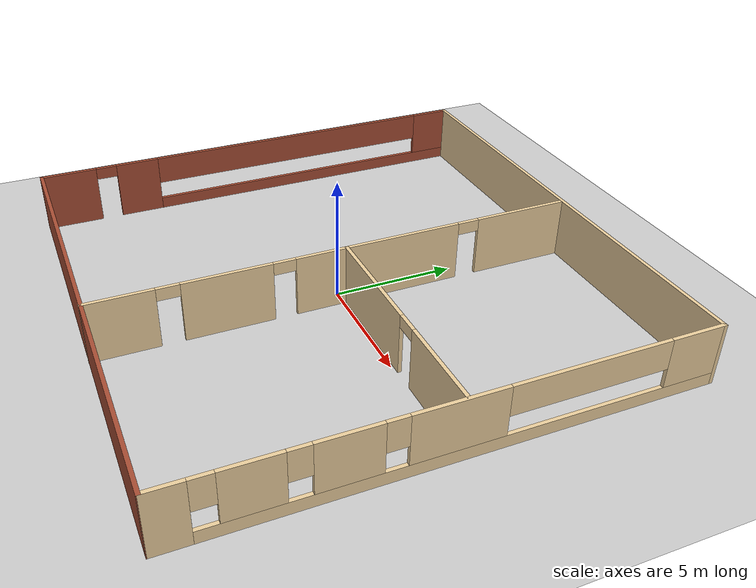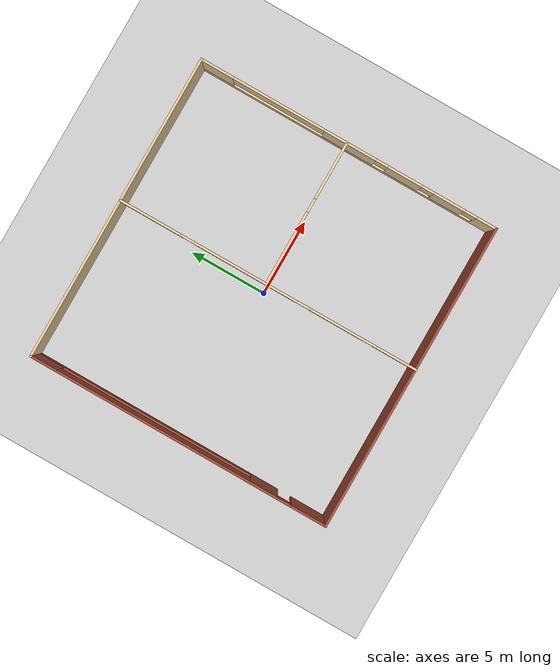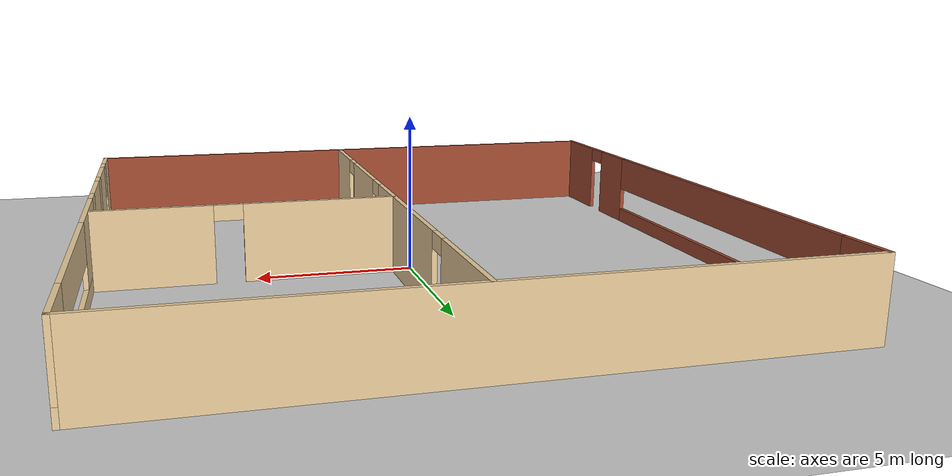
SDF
<sdf version="1.6">
 <world name="default">
  <model name="ground_plane">
   <static>1</static>
   <link name="link">
    <collision name="collision">
     <geometry><plane><normal>0 0 1</normal><size>100 100</size></plane></geometry>
     <surface><friction><ode><mu>100</mu><mu2>50</mu2></ode></friction></surface>
    </collision>
    <visual name="visual">
     <cast_shadows>0</cast_shadows>
     <geometry><plane><normal>0 0 1</normal><size>100 100</size></plane></geometry>
     <material>
      <script><uri>file://media/materials/scripts/gazebo.material</uri><name>Gazebo/Grey</name></script>
     </material>
    </visual>
   </link>
  </model>
  <model name="floor-blueprint">
   <link name="Wall_11">
    <pose>0.520348 -0.015048 0 0 -0 1.57213</pose>
    <visual name="Wall_11_Visual_0">
     <pose>-8.62771 0 1.25 0 -0 0</pose>
     <geometry><box><size>2.68538 0.15 2.5</size></box></geometry>
     <material>
      <script><uri>file://media/materials/scripts/gazebo.material</uri><name>Gazebo/Grey</name></script>
      <ambient>0.921569 0.807843 0.615686 1</ambient>
      <shader type="pixel"/>
      <diffuse>0.7 0.7 0.7 1</diffuse>
      <specular>0.01 0.01 0.01 1</specular>
      <emissive>0 0 0 1</emissive>
     </material>
     <meta><layer>0</layer></meta>
    </visual>
    <visual name="Wall_11_Visual_1">
     <pose>-4.6147 0 1.25 0 -0 0</pose>
     <geometry><box><size>3.54064 0.15 2.5</size></box></geometry>
     <material>
      <script><uri>file://media/materials/scripts/gazebo.material</uri><name>Gazebo/Grey</name></script>
      <ambient>0.921569 0.807843 0.615686 1</ambient>
      <shader type="pixel"/>
      <diffuse>0.7 0.7 0.7 1</diffuse>
      <specular>0.01 0.01 0.01 1</specular>
      <emissive>0 0 0 1</emissive>
     </material>
     <meta><layer>0</layer></meta>
    </visual>
    <visual name="Wall_11_Visual_2">
     <pose>1.51466 0 1.25 0 -0 0</pose>
     <geometry><box><size>6.91808 0.15 2.5</size></box></geometry>
     <material>
      <script><uri>file://media/materials/scripts/gazebo.material</uri><name>Gazebo/Grey</name></script>
      <ambient>0.921569 0.807843 0.615686 1</ambient>
      <shader type="pixel"/>
      <diffuse>0.7 0.7 0.7 1</diffuse>
      <specular>0.01 0.01 0.01 1</specular>
      <emissive>0 0 0 1</emissive>
     </material>
     <meta><layer>0</layer></meta>
    </visual>
    <visual name="Wall_11_Visual_3">
     <pose>7.92205 0 1.25 0 -0 0</pose>
     <geometry><box><size>4.09671 0.15 2.5</size></box></geometry>
     <material>
      <script><uri>file://media/materials/scripts/gazebo.material</uri><name>Gazebo/Grey</name></script>
      <ambient>0.921569 0.807843 0.615686 1</ambient>
      <shader type="pixel"/>
      <diffuse>0.7 0.7 0.7 1</diffuse>
      <specular>0.01 0.01 0.01 1</specular>
      <emissive>0 0 0 1</emissive>
     </material>
     <meta><layer>0</layer></meta>
    </visual>
    <visual name="Wall_11_Visual_4">
     <pose>-6.83502 0 2.25 0 -0 0</pose>
     <geometry><box><size>0.9 0.15 0.5</size></box></geometry>
     <material>
      <script><uri>file://media/materials/scripts/gazebo.material</uri><name>Gazebo/Grey</name></script>
      <ambient>0.921569 0.807843 0.615686 1</ambient>
      <shader type="pixel"/>
      <diffuse>0.7 0.7 0.7 1</diffuse>
      <specular>0.01 0.01 0.01 1</specular>
      <emissive>0 0 0 1</emissive>
     </material>
     <meta><layer>0</layer></meta>
    </visual>
    <visual name="Wall_11_Visual_5">
     <pose>-2.39438 0 2.25 0 -0 0</pose>
     <geometry><box><size>0.9 0.15 0.5</size></box></geometry>
     <material>
      <script><uri>file://media/materials/scripts/gazebo.material</uri><name>Gazebo/Grey</name></script>
      <ambient>0.921569 0.807843 0.615686 1</ambient>
      <shader type="pixel"/>
      <diffuse>0.7 0.7 0.7 1</diffuse>
      <specular>0.01 0.01 0.01 1</specular>
      <emissive>0 0 0 1</emissive>
     </material>
     <meta><layer>0</layer></meta>
    </visual>
    <visual name="Wall_11_Visual_6">
     <pose>5.4237 0 2.25 0 -0 0</pose>
     <geometry><box><size>0.9 0.15 0.5</size></box></geometry>
     <material>
      <script><uri>file://media/materials/scripts/gazebo.material</uri><name>Gazebo/Grey</name></script>
      <ambient>0.921569 0.807843 0.615686 1</ambient>
      <shader type="pixel"/>
      <diffuse>0.7 0.7 0.7 1</diffuse>
      <specular>0.01 0.01 0.01 1</specular>
      <emissive>0 0 0 1</emissive>
     </material>
     <meta><layer>0</layer></meta>
    </visual>
    <collision name="Wall_11_Collision_0">
     <pose>-8.62771 0 1.25 0 -0 0</pose>
     <geometry><box><size>2.68538 0.15 2.5</size></box></geometry>
     <surface>
      <friction>
       <ode><mu>1</mu><mu2>1</mu2><fdir1>0 0 0</fdir1><slip1>0</slip1><slip2>0</slip2></ode>
       <torsional>
        <coefficient>1</coefficient>
        <patch_radius>0</patch_radius>
        <surface_radius>0</surface_radius>
        <use_patch_radius>1</use_patch_radius>
        <ode><slip>0</slip></ode>
       </torsional>
      </friction>
      <bounce><restitution_coefficient>0</restitution_coefficient><threshold>1e+06</threshold></bounce>
      <contact>
       <collide_without_contact>0</collide_without_contact>
       <collide_without_contact_bitmask>1</collide_without_contact_bitmask>
       <collide_bitmask>1</collide_bitmask>
       <ode>
        <soft_cfm>0</soft_cfm>
        <soft_erp>0.2</soft_erp>
        <kp>1e+13</kp>
        <kd>1</kd>
        <max_vel>0.01</max_vel>
        <min_depth>0</min_depth>
       </ode>
       <bullet>
        <split_impulse>1</split_impulse>
        <split_impulse_penetration_threshold>-0.01</split_impulse_penetration_threshold>
        <soft_cfm>0</soft_cfm>
        <soft_erp>0.2</soft_erp>
        <kp>1e+13</kp>
        <kd>1</kd>
       </bullet>
      </contact>
     </surface>
    </collision>
    <collision name="Wall_11_Collision_1">
     <pose>-4.6147 0 1.25 0 -0 0</pose>
     <geometry><box><size>3.54064 0.15 2.5</size></box></geometry>
     <surface>
      <friction>
       <ode><mu>1</mu><mu2>1</mu2><fdir1>0 0 0</fdir1><slip1>0</slip1><slip2>0</slip2></ode>
       <torsional>
        <coefficient>1</coefficient>
        <patch_radius>0</patch_radius>
        <surface_radius>0</surface_radius>
        <use_patch_radius>1</use_patch_radius>
        <ode><slip>0</slip></ode>
       </torsional>
      </friction>
      <bounce><restitution_coefficient>0</restitution_coefficient><threshold>1e+06</threshold></bounce>
      <contact>
       <collide_without_contact>0</collide_without_contact>
       <collide_without_contact_bitmask>1</collide_without_contact_bitmask>
       <collide_bitmask>1</collide_bitmask>
       <ode>
        <soft_cfm>0</soft_cfm>
        <soft_erp>0.2</soft_erp>
        <kp>1e+13</kp>
        <kd>1</kd>
        <max_vel>0.01</max_vel>
        <min_depth>0</min_depth>
       </ode>
       <bullet>
        <split_impulse>1</split_impulse>
        <split_impulse_penetration_threshold>-0.01</split_impulse_penetration_threshold>
        <soft_cfm>0</soft_cfm>
        <soft_erp>0.2</soft_erp>
        <kp>1e+13</kp>
        <kd>1</kd>
       </bullet>
      </contact>
     </surface>
    </collision>
    <collision name="Wall_11_Collision_2">
     <pose>1.51466 0 1.25 0 -0 0</pose>
     <geometry><box><size>6.91808 0.15 2.5</size></box></geometry>
     <surface>
      <friction>
       <ode><mu>1</mu><mu2>1</mu2><fdir1>0 0 0</fdir1><slip1>0</slip1><slip2>0</slip2></ode>
       <torsional>
        <coefficient>1</coefficient>
        <patch_radius>0</patch_radius>
        <surface_radius>0</surface_radius>
        <use_patch_radius>1</use_patch_radius>
        <ode><slip>0</slip></ode>
       </torsional>
      </friction>
      <bounce><restitution_coefficient>0</restitution_coefficient><threshold>1e+06</threshold></bounce>
      <contact>
       <collide_without_contact>0</collide_without_contact>
       <collide_without_contact_bitmask>1</collide_without_contact_bitmask>
       <collide_bitmask>1</collide_bitmask>
       <ode>
        <soft_cfm>0</soft_cfm>
        <soft_erp>0.2</soft_erp>
        <kp>1e+13</kp>
        <kd>1</kd>
        <max_vel>0.01</max_vel>
        <min_depth>0</min_depth>
       </ode>
       <bullet>
        <split_impulse>1</split_impulse>
        <split_impulse_penetration_threshold>-0.01</split_impulse_penetration_threshold>
        <soft_cfm>0</soft_cfm>
        <soft_erp>0.2</soft_erp>
        <kp>1e+13</kp>
        <kd>1</kd>
       </bullet>
      </contact>
     </surface>
    </collision>
    <collision name="Wall_11_Collision_3">
     <pose>7.92205 0 1.25 0 -0 0</pose>
     <geometry><box><size>4.09671 0.15 2.5</size></box></geometry>
     <surface>
      <friction>
       <ode><mu>1</mu><mu2>1</mu2><fdir1>0 0 0</fdir1><slip1>0</slip1><slip2>0</slip2></ode>
       <torsional>
        <coefficient>1</coefficient>
        <patch_radius>0</patch_radius>
        <surface_radius>0</surface_radius>
        <use_patch_radius>1</use_patch_radius>
        <ode><slip>0</slip></ode>
       </torsional>
      </friction>
      <bounce><restitution_coefficient>0</restitution_coefficient><threshold>1e+06</threshold></bounce>
      <contact>
       <collide_without_contact>0</collide_without_contact>
       <collide_without_contact_bitmask>1</collide_without_contact_bitmask>
       <collide_bitmask>1</collide_bitmask>
       <ode>
        <soft_cfm>0</soft_cfm>
        <soft_erp>0.2</soft_erp>
        <kp>1e+13</kp>
        <kd>1</kd>
        <max_vel>0.01</max_vel>
        <min_depth>0</min_depth>
       </ode>
       <bullet>
        <split_impulse>1</split_impulse>
        <split_impulse_penetration_threshold>-0.01</split_impulse_penetration_threshold>
        <soft_cfm>0</soft_cfm>
        <soft_erp>0.2</soft_erp>
        <kp>1e+13</kp>
        <kd>1</kd>
       </bullet>
      </contact>
     </surface>
    </collision>
    <collision name="Wall_11_Collision_4">
     <pose>-6.83502 0 2.25 0 -0 0</pose>
     <geometry><box><size>0.9 0.15 0.5</size></box></geometry>
     <surface>
      <friction>
       <ode><mu>1</mu><mu2>1</mu2><fdir1>0 0 0</fdir1><slip1>0</slip1><slip2>0</slip2></ode>
       <torsional>
        <coefficient>1</coefficient>
        <patch_radius>0</patch_radius>
        <surface_radius>0</surface_radius>
        <use_patch_radius>1</use_patch_radius>
        <ode><slip>0</slip></ode>
       </torsional>
      </friction>
      <bounce><restitution_coefficient>0</restitution_coefficient><threshold>1e+06</threshold></bounce>
      <contact>
       <collide_without_contact>0</collide_without_contact>
       <collide_without_contact_bitmask>1</collide_without_contact_bitmask>
       <collide_bitmask>1</collide_bitmask>
       <ode>
        <soft_cfm>0</soft_cfm>
        <soft_erp>0.2</soft_erp>
        <kp>1e+13</kp>
        <kd>1</kd>
        <max_vel>0.01</max_vel>
        <min_depth>0</min_depth>
       </ode>
       <bullet>
        <split_impulse>1</split_impulse>
        <split_impulse_penetration_threshold>-0.01</split_impulse_penetration_threshold>
        <soft_cfm>0</soft_cfm>
        <soft_erp>0.2</soft_erp>
        <kp>1e+13</kp>
        <kd>1</kd>
       </bullet>
      </contact>
     </surface>
    </collision>
    <collision name="Wall_11_Collision_5">
     <pose>-2.39438 0 2.25 0 -0 0</pose>
     <geometry><box><size>0.9 0.15 0.5</size></box></geometry>
     <surface>
      <friction>
       <ode><mu>1</mu><mu2>1</mu2><fdir1>0 0 0</fdir1><slip1>0</slip1><slip2>0</slip2></ode>
       <torsional>
        <coefficient>1</coefficient>
        <patch_radius>0</patch_radius>
        <surface_radius>0</surface_radius>
        <use_patch_radius>1</use_patch_radius>
        <ode><slip>0</slip></ode>
       </torsional>
      </friction>
      <bounce><restitution_coefficient>0</restitution_coefficient><threshold>1e+06</threshold></bounce>
      <contact>
       <collide_without_contact>0</collide_without_contact>
       <collide_without_contact_bitmask>1</collide_without_contact_bitmask>
       <collide_bitmask>1</collide_bitmask>
       <ode>
        <soft_cfm>0</soft_cfm>
        <soft_erp>0.2</soft_erp>
        <kp>1e+13</kp>
        <kd>1</kd>
        <max_vel>0.01</max_vel>
        <min_depth>0</min_depth>
       </ode>
       <bullet>
        <split_impulse>1</split_impulse>
        <split_impulse_penetration_threshold>-0.01</split_impulse_penetration_threshold>
        <soft_cfm>0</soft_cfm>
        <soft_erp>0.2</soft_erp>
        <kp>1e+13</kp>
        <kd>1</kd>
       </bullet>
      </contact>
     </surface>
    </collision>
    <collision name="Wall_11_Collision_6">
     <pose>5.4237 0 2.25 0 -0 0</pose>
     <geometry><box><size>0.9 0.15 0.5</size></box></geometry>
     <surface>
      <friction>
       <ode><mu>1</mu><mu2>1</mu2><fdir1>0 0 0</fdir1><slip1>0</slip1><slip2>0</slip2></ode>
       <torsional>
        <coefficient>1</coefficient>
        <patch_radius>0</patch_radius>
        <surface_radius>0</surface_radius>
        <use_patch_radius>1</use_patch_radius>
        <ode><slip>0</slip></ode>
       </torsional>
      </friction>
      <bounce><restitution_coefficient>0</restitution_coefficient><threshold>1e+06</threshold></bounce>
      <contact>
       <collide_without_contact>0</collide_without_contact>
       <collide_without_contact_bitmask>1</collide_without_contact_bitmask>
       <collide_bitmask>1</collide_bitmask>
       <ode>
        <soft_cfm>0</soft_cfm>
        <soft_erp>0.2</soft_erp>
        <kp>1e+13</kp>
        <kd>1</kd>
        <max_vel>0.01</max_vel>
        <min_depth>0</min_depth>
       </ode>
       <bullet>
        <split_impulse>1</split_impulse>
        <split_impulse_penetration_threshold>-0.01</split_impulse_penetration_threshold>
        <soft_cfm>0</soft_cfm>
        <soft_erp>0.2</soft_erp>
        <kp>1e+13</kp>
        <kd>1</kd>
       </bullet>
      </contact>
     </surface>
    </collision>
   </link>
   <link name="Wall_2">
    <pose>2.1e-05 -9.90419 0 0 -0 0.000505</pose>
    <visual name="Wall_2_Visual">
     <pose>0 0 1.25 0 -0 0</pose>
     <geometry><box><size>20.1008 0.15 2.5</size></box></geometry>
     <material>
      <script><uri>file://media/materials/scripts/gazebo.material</uri><name>Gazebo/Bricks</name></script>
      <ambient>1 1 1 1</ambient>
      <shader type="pixel"/>
      <diffuse>1 1 1 1</diffuse>
      <specular>0.2 0.2 0.2 1</specular>
      <emissive>0 0 0 1</emissive>
     </material>
     <meta><layer>0</layer></meta>
    </visual>
    <collision name="Wall_2_Collision">
     <pose>0 0 1.25 0 -0 0</pose>
     <geometry><box><size>20.1008 0.15 2.5</size></box></geometry>
     <surface>
      <friction>
       <ode><mu>1</mu><mu2>1</mu2><fdir1>0 0 0</fdir1><slip1>0</slip1><slip2>0</slip2></ode>
       <torsional>
        <coefficient>1</coefficient>
        <patch_radius>0</patch_radius>
        <surface_radius>0</surface_radius>
        <use_patch_radius>1</use_patch_radius>
        <ode><slip>0</slip></ode>
       </torsional>
      </friction>
      <bounce><restitution_coefficient>0</restitution_coefficient><threshold>1e+06</threshold></bounce>
      <contact>
       <collide_without_contact>0</collide_without_contact>
       <collide_without_contact_bitmask>1</collide_without_contact_bitmask>
       <collide_bitmask>1</collide_bitmask>
       <ode>
        <soft_cfm>0</soft_cfm>
        <soft_erp>0.2</soft_erp>
        <kp>1e+13</kp>
        <kd>1</kd>
        <max_vel>0.01</max_vel>
        <min_depth>0</min_depth>
       </ode>
       <bullet>
        <split_impulse>1</split_impulse>
        <split_impulse_penetration_threshold>-0.01</split_impulse_penetration_threshold>
        <soft_cfm>0</soft_cfm>
        <soft_erp>0.2</soft_erp>
        <kp>1e+13</kp>
        <kd>1</kd>
       </bullet>
      </contact>
     </surface>
    </collision>
   </link>
   <link name="Wall_28">
    <pose>5.22927 0.135167 0 0 -0 0</pose>
    <visual name="Wall_28_Visual_0">
     <pose>-2.32374 0 1.25 0 -0 0</pose>
     <geometry><box><size>4.85252 0.15 2.5</size></box></geometry>
     <material>
      <script><uri>file://media/materials/scripts/gazebo.material</uri><name>Gazebo/Grey</name></script>
      <ambient>0.921569 0.807843 0.615686 1</ambient>
      <shader type="pixel"/>
      <diffuse>0.7 0.7 0.7 1</diffuse>
      <specular>0.01 0.01 0.01 1</specular>
      <emissive>0 0 0 1</emissive>
     </material>
     <meta><layer>0</layer></meta>
    </visual>
    <visual name="Wall_28_Visual_1">
     <pose>2.87626 0 1.25 0 -0 0</pose>
     <geometry><box><size>3.74748 0.15 2.5</size></box></geometry>
     <material>
      <script><uri>file://media/materials/scripts/gazebo.material</uri><name>Gazebo/Grey</name></script>
      <ambient>0.921569 0.807843 0.615686 1</ambient>
      <shader type="pixel"/>
      <diffuse>0.7 0.7 0.7 1</diffuse>
      <specular>0.01 0.01 0.01 1</specular>
      <emissive>0 0 0 1</emissive>
     </material>
     <meta><layer>0</layer></meta>
    </visual>
    <visual name="Wall_28_Visual_2">
     <pose>0.552517 0 2.25 0 -0 0</pose>
     <geometry><box><size>0.9 0.15 0.5</size></box></geometry>
     <material>
      <script><uri>file://media/materials/scripts/gazebo.material</uri><name>Gazebo/Grey</name></script>
      <ambient>0.921569 0.807843 0.615686 1</ambient>
      <shader type="pixel"/>
      <diffuse>0.7 0.7 0.7 1</diffuse>
      <specular>0.01 0.01 0.01 1</specular>
      <emissive>0 0 0 1</emissive>
     </material>
     <meta><layer>0</layer></meta>
    </visual>
    <collision name="Wall_28_Collision_0">
     <pose>-2.32374 0 1.25 0 -0 0</pose>
     <geometry><box><size>4.85252 0.15 2.5</size></box></geometry>
     <surface>
      <friction>
       <ode><mu>1</mu><mu2>1</mu2><fdir1>0 0 0</fdir1><slip1>0</slip1><slip2>0</slip2></ode>
       <torsional>
        <coefficient>1</coefficient>
        <patch_radius>0</patch_radius>
        <surface_radius>0</surface_radius>
        <use_patch_radius>1</use_patch_radius>
        <ode><slip>0</slip></ode>
       </torsional>
      </friction>
      <bounce><restitution_coefficient>0</restitution_coefficient><threshold>1e+06</threshold></bounce>
      <contact>
       <collide_without_contact>0</collide_without_contact>
       <collide_without_contact_bitmask>1</collide_without_contact_bitmask>
       <collide_bitmask>1</collide_bitmask>
       <ode>
        <soft_cfm>0</soft_cfm>
        <soft_erp>0.2</soft_erp>
        <kp>1e+13</kp>
        <kd>1</kd>
        <max_vel>0.01</max_vel>
        <min_depth>0</min_depth>
       </ode>
       <bullet>
        <split_impulse>1</split_impulse>
        <split_impulse_penetration_threshold>-0.01</split_impulse_penetration_threshold>
        <soft_cfm>0</soft_cfm>
        <soft_erp>0.2</soft_erp>
        <kp>1e+13</kp>
        <kd>1</kd>
       </bullet>
      </contact>
     </surface>
    </collision>
    <collision name="Wall_28_Collision_1">
     <pose>2.87626 0 1.25 0 -0 0</pose>
     <geometry><box><size>3.74748 0.15 2.5</size></box></geometry>
     <surface>
      <friction>
       <ode><mu>1</mu><mu2>1</mu2><fdir1>0 0 0</fdir1><slip1>0</slip1><slip2>0</slip2></ode>
       <torsional>
        <coefficient>1</coefficient>
        <patch_radius>0</patch_radius>
        <surface_radius>0</surface_radius>
        <use_patch_radius>1</use_patch_radius>
        <ode><slip>0</slip></ode>
       </torsional>
      </friction>
      <bounce><restitution_coefficient>0</restitution_coefficient><threshold>1e+06</threshold></bounce>
      <contact>
       <collide_without_contact>0</collide_without_contact>
       <collide_without_contact_bitmask>1</collide_without_contact_bitmask>
       <collide_bitmask>1</collide_bitmask>
       <ode>
        <soft_cfm>0</soft_cfm>
        <soft_erp>0.2</soft_erp>
        <kp>1e+13</kp>
        <kd>1</kd>
        <max_vel>0.01</max_vel>
        <min_depth>0</min_depth>
       </ode>
       <bullet>
        <split_impulse>1</split_impulse>
        <split_impulse_penetration_threshold>-0.01</split_impulse_penetration_threshold>
        <soft_cfm>0</soft_cfm>
        <soft_erp>0.2</soft_erp>
        <kp>1e+13</kp>
        <kd>1</kd>
       </bullet>
      </contact>
     </surface>
    </collision>
    <collision name="Wall_28_Collision_2">
     <pose>0.552517 0 2.25 0 -0 0</pose>
     <geometry><box><size>0.9 0.15 0.5</size></box></geometry>
     <surface>
      <friction>
       <ode><mu>1</mu><mu2>1</mu2><fdir1>0 0 0</fdir1><slip1>0</slip1><slip2>0</slip2></ode>
       <torsional>
        <coefficient>1</coefficient>
        <patch_radius>0</patch_radius>
        <surface_radius>0</surface_radius>
        <use_patch_radius>1</use_patch_radius>
        <ode><slip>0</slip></ode>
       </torsional>
      </friction>
      <bounce><restitution_coefficient>0</restitution_coefficient><threshold>1e+06</threshold></bounce>
      <contact>
       <collide_without_contact>0</collide_without_contact>
       <collide_without_contact_bitmask>1</collide_without_contact_bitmask>
       <collide_bitmask>1</collide_bitmask>
       <ode>
        <soft_cfm>0</soft_cfm>
        <soft_erp>0.2</soft_erp>
        <kp>1e+13</kp>
        <kd>1</kd>
        <max_vel>0.01</max_vel>
        <min_depth>0</min_depth>
       </ode>
       <bullet>
        <split_impulse>1</split_impulse>
        <split_impulse_penetration_threshold>-0.01</split_impulse_penetration_threshold>
        <soft_cfm>0</soft_cfm>
        <soft_erp>0.2</soft_erp>
        <kp>1e+13</kp>
        <kd>1</kd>
       </bullet>
      </contact>
     </surface>
    </collision>
   </link>
   <link name="Wall_3">
    <pose>9.97471 0.005693 0 0 -0 1.57087</pose>
    <visual name="Wall_3_Visual_0">
     <pose>-9.28869 0 1.25 0 -0 0</pose>
     <geometry><box><size>1.38231 0.15 2.5</size></box></geometry>
     <material>
      <script><uri>file://media/materials/scripts/gazebo.material</uri><name>Gazebo/Grey</name></script>
      <ambient>0.921569 0.807843 0.615686 1</ambient>
      <shader type="pixel"/>
      <diffuse>0.7 0.7 0.7 1</diffuse>
      <specular>0.01 0.01 0.01 1</specular>
      <emissive>0 0 0 1</emissive>
     </material>
     <meta><layer>0</layer></meta>
    </visual>
    <visual name="Wall_3_Visual_1">
     <pose>0.691154 0 0.25 0 -0 0</pose>
     <geometry><box><size>18.5774 0.15 0.5</size></box></geometry>
     <material>
      <script><uri>file://media/materials/scripts/gazebo.material</uri><name>Gazebo/Grey</name></script>
      <ambient>0.921569 0.807843 0.615686 1</ambient>
      <shader type="pixel"/>
      <diffuse>0.7 0.7 0.7 1</diffuse>
      <specular>0.01 0.01 0.01 1</specular>
      <emissive>0 0 0 1</emissive>
     </material>
     <meta><layer>0</layer></meta>
    </visual>
    <visual name="Wall_3_Visual_2">
     <pose>-6.76344 0 1.5 0 -0 0</pose>
     <geometry><box><size>2.0682 0.15 2</size></box></geometry>
     <material>
      <script><uri>file://media/materials/scripts/gazebo.material</uri><name>Gazebo/Grey</name></script>
      <ambient>0.921569 0.807843 0.615686 1</ambient>
      <shader type="pixel"/>
      <diffuse>0.7 0.7 0.7 1</diffuse>
      <specular>0.01 0.01 0.01 1</specular>
      <emissive>0 0 0 1</emissive>
     </material>
     <meta><layer>0</layer></meta>
    </visual>
    <visual name="Wall_3_Visual_3">
     <pose>-3.77959 0 1.5 0 -0 0</pose>
     <geometry><box><size>2.29949 0.15 2</size></box></geometry>
     <material>
      <script><uri>file://media/materials/scripts/gazebo.material</uri><name>Gazebo/Grey</name></script>
      <ambient>0.921569 0.807843 0.615686 1</ambient>
      <shader type="pixel"/>
      <diffuse>0.7 0.7 0.7 1</diffuse>
      <specular>0.01 0.01 0.01 1</specular>
      <emissive>0 0 0 1</emissive>
     </material>
     <meta><layer>0</layer></meta>
    </visual>
    <visual name="Wall_3_Visual_4">
     <pose>-0.101831 0 1.5 0 -0 0</pose>
     <geometry><box><size>3.45603 0.15 2</size></box></geometry>
     <material>
      <script><uri>file://media/materials/scripts/gazebo.material</uri><name>Gazebo/Grey</name></script>
      <ambient>0.921569 0.807843 0.615686 1</ambient>
      <shader type="pixel"/>
      <diffuse>0.7 0.7 0.7 1</diffuse>
      <specular>0.01 0.01 0.01 1</specular>
      <emissive>0 0 0 1</emissive>
     </material>
     <meta><layer>0</layer></meta>
    </visual>
    <visual name="Wall_3_Visual_5">
     <pose>8.86304 0 1.5 0 -0 0</pose>
     <geometry><box><size>2.23361 0.15 2</size></box></geometry>
     <material>
      <script><uri>file://media/materials/scripts/gazebo.material</uri><name>Gazebo/Grey</name></script>
      <ambient>0.921569 0.807843 0.615686 1</ambient>
      <shader type="pixel"/>
      <diffuse>0.7 0.7 0.7 1</diffuse>
      <specular>0.01 0.01 0.01 1</specular>
      <emissive>0 0 0 1</emissive>
     </material>
     <meta><layer>0</layer></meta>
    </visual>
    <visual name="Wall_3_Visual_7">
     <pose>-5.32933 0 1.9 0 -0 0</pose>
     <geometry><box><size>0.8 0.15 1.2</size></box></geometry>
     <material>
      <script><uri>file://media/materials/scripts/gazebo.material</uri><name>Gazebo/Grey</name></script>
      <ambient>0.921569 0.807843 0.615686 1</ambient>
      <shader type="pixel"/>
      <diffuse>0.7 0.7 0.7 1</diffuse>
      <specular>0.01 0.01 0.01 1</specular>
      <emissive>0 0 0 1</emissive>
     </material>
     <meta><layer>0</layer></meta>
    </visual>
    <visual name="Wall_3_Visual_6">
     <pose>-8.19754 0 1.9 0 -0 0</pose>
     <geometry><box><size>0.8 0.15 1.2</size></box></geometry>
     <material>
      <script><uri>file://media/materials/scripts/gazebo.material</uri><name>Gazebo/Grey</name></script>
      <ambient>0.921569 0.807843 0.615686 1</ambient>
      <shader type="pixel"/>
      <diffuse>0.7 0.7 0.7 1</diffuse>
      <specular>0.01 0.01 0.01 1</specular>
      <emissive>0 0 0 1</emissive>
     </material>
     <meta><layer>0</layer></meta>
    </visual>
    <visual name="Wall_3_Visual_8">
     <pose>-2.22985 0 1.9 0 -0 0</pose>
     <geometry><box><size>0.8 0.15 1.2</size></box></geometry>
     <material>
      <script><uri>file://media/materials/scripts/gazebo.material</uri><name>Gazebo/Grey</name></script>
      <ambient>0.921569 0.807843 0.615686 1</ambient>
      <shader type="pixel"/>
      <diffuse>0.7 0.7 0.7 1</diffuse>
      <specular>0.01 0.01 0.01 1</specular>
      <emissive>0 0 0 1</emissive>
     </material>
     <meta><layer>0</layer></meta>
    </visual>
    <visual name="Wall_3_Visual_9">
     <pose>4.68621 0 1.9 0 -0 0</pose>
     <geometry><box><size>6.12005 0.15 1.2</size></box></geometry>
     <material>
      <script><uri>file://media/materials/scripts/gazebo.material</uri><name>Gazebo/Grey</name></script>
      <ambient>0.921569 0.807843 0.615686 1</ambient>
      <shader type="pixel"/>
      <diffuse>0.7 0.7 0.7 1</diffuse>
      <specular>0.01 0.01 0.01 1</specular>
      <emissive>0 0 0 1</emissive>
     </material>
     <meta><layer>0</layer></meta>
    </visual>
    <collision name="Wall_3_Collision_0">
     <pose>-9.28869 0 1.25 0 -0 0</pose>
     <geometry><box><size>1.38231 0.15 2.5</size></box></geometry>
     <surface>
      <friction>
       <ode><mu>1</mu><mu2>1</mu2><fdir1>0 0 0</fdir1><slip1>0</slip1><slip2>0</slip2></ode>
       <torsional>
        <coefficient>1</coefficient>
        <patch_radius>0</patch_radius>
        <surface_radius>0</surface_radius>
        <use_patch_radius>1</use_patch_radius>
        <ode><slip>0</slip></ode>
       </torsional>
      </friction>
      <bounce><restitution_coefficient>0</restitution_coefficient><threshold>1e+06</threshold></bounce>
      <contact>
       <collide_without_contact>0</collide_without_contact>
       <collide_without_contact_bitmask>1</collide_without_contact_bitmask>
       <collide_bitmask>1</collide_bitmask>
       <ode>
        <soft_cfm>0</soft_cfm>
        <soft_erp>0.2</soft_erp>
        <kp>1e+13</kp>
        <kd>1</kd>
        <max_vel>0.01</max_vel>
        <min_depth>0</min_depth>
       </ode>
       <bullet>
        <split_impulse>1</split_impulse>
        <split_impulse_penetration_threshold>-0.01</split_impulse_penetration_threshold>
        <soft_cfm>0</soft_cfm>
        <soft_erp>0.2</soft_erp>
        <kp>1e+13</kp>
        <kd>1</kd>
       </bullet>
      </contact>
     </surface>
    </collision>
    <collision name="Wall_3_Collision_1">
     <pose>0.691154 0 0.25 0 -0 0</pose>
     <geometry><box><size>18.5774 0.15 0.5</size></box></geometry>
     <surface>
      <friction>
       <ode><mu>1</mu><mu2>1</mu2><fdir1>0 0 0</fdir1><slip1>0</slip1><slip2>0</slip2></ode>
       <torsional>
        <coefficient>1</coefficient>
        <patch_radius>0</patch_radius>
        <surface_radius>0</surface_radius>
        <use_patch_radius>1</use_patch_radius>
        <ode><slip>0</slip></ode>
       </torsional>
      </friction>
      <bounce><restitution_coefficient>0</restitution_coefficient><threshold>1e+06</threshold></bounce>
      <contact>
       <collide_without_contact>0</collide_without_contact>
       <collide_without_contact_bitmask>1</collide_without_contact_bitmask>
       <collide_bitmask>1</collide_bitmask>
       <ode>
        <soft_cfm>0</soft_cfm>
        <soft_erp>0.2</soft_erp>
        <kp>1e+13</kp>
        <kd>1</kd>
        <max_vel>0.01</max_vel>
        <min_depth>0</min_depth>
       </ode>
       <bullet>
        <split_impulse>1</split_impulse>
        <split_impulse_penetration_threshold>-0.01</split_impulse_penetration_threshold>
        <soft_cfm>0</soft_cfm>
        <soft_erp>0.2</soft_erp>
        <kp>1e+13</kp>
        <kd>1</kd>
       </bullet>
      </contact>
     </surface>
    </collision>
    <collision name="Wall_3_Collision_2">
     <pose>-6.76344 0 1.5 0 -0 0</pose>
     <geometry><box><size>2.0682 0.15 2</size></box></geometry>
     <surface>
      <friction>
       <ode><mu>1</mu><mu2>1</mu2><fdir1>0 0 0</fdir1><slip1>0</slip1><slip2>0</slip2></ode>
       <torsional>
        <coefficient>1</coefficient>
        <patch_radius>0</patch_radius>
        <surface_radius>0</surface_radius>
        <use_patch_radius>1</use_patch_radius>
        <ode><slip>0</slip></ode>
       </torsional>
      </friction>
      <bounce><restitution_coefficient>0</restitution_coefficient><threshold>1e+06</threshold></bounce>
      <contact>
       <collide_without_contact>0</collide_without_contact>
       <collide_without_contact_bitmask>1</collide_without_contact_bitmask>
       <collide_bitmask>1</collide_bitmask>
       <ode>
        <soft_cfm>0</soft_cfm>
        <soft_erp>0.2</soft_erp>
        <kp>1e+13</kp>
        <kd>1</kd>
        <max_vel>0.01</max_vel>
        <min_depth>0</min_depth>
       </ode>
       <bullet>
        <split_impulse>1</split_impulse>
        <split_impulse_penetration_threshold>-0.01</split_impulse_penetration_threshold>
        <soft_cfm>0</soft_cfm>
        <soft_erp>0.2</soft_erp>
        <kp>1e+13</kp>
        <kd>1</kd>
       </bullet>
      </contact>
     </surface>
    </collision>
    <collision name="Wall_3_Collision_3">
     <pose>-3.77959 0 1.5 0 -0 0</pose>
     <geometry><box><size>2.29949 0.15 2</size></box></geometry>
     <surface>
      <friction>
       <ode><mu>1</mu><mu2>1</mu2><fdir1>0 0 0</fdir1><slip1>0</slip1><slip2>0</slip2></ode>
       <torsional>
        <coefficient>1</coefficient>
        <patch_radius>0</patch_radius>
        <surface_radius>0</surface_radius>
        <use_patch_radius>1</use_patch_radius>
        <ode><slip>0</slip></ode>
       </torsional>
      </friction>
      <bounce><restitution_coefficient>0</restitution_coefficient><threshold>1e+06</threshold></bounce>
      <contact>
       <collide_without_contact>0</collide_without_contact>
       <collide_without_contact_bitmask>1</collide_without_contact_bitmask>
       <collide_bitmask>1</collide_bitmask>
       <ode>
        <soft_cfm>0</soft_cfm>
        <soft_erp>0.2</soft_erp>
        <kp>1e+13</kp>
        <kd>1</kd>
        <max_vel>0.01</max_vel>
        <min_depth>0</min_depth>
       </ode>
       <bullet>
        <split_impulse>1</split_impulse>
        <split_impulse_penetration_threshold>-0.01</split_impulse_penetration_threshold>
        <soft_cfm>0</soft_cfm>
        <soft_erp>0.2</soft_erp>
        <kp>1e+13</kp>
        <kd>1</kd>
       </bullet>
      </contact>
     </surface>
    </collision>
    <collision name="Wall_3_Collision_4">
     <pose>-0.101831 0 1.5 0 -0 0</pose>
     <geometry><box><size>3.45603 0.15 2</size></box></geometry>
     <surface>
      <friction>
       <ode><mu>1</mu><mu2>1</mu2><fdir1>0 0 0</fdir1><slip1>0</slip1><slip2>0</slip2></ode>
       <torsional>
        <coefficient>1</coefficient>
        <patch_radius>0</patch_radius>
        <surface_radius>0</surface_radius>
        <use_patch_radius>1</use_patch_radius>
        <ode><slip>0</slip></ode>
       </torsional>
      </friction>
      <bounce><restitution_coefficient>0</restitution_coefficient><threshold>1e+06</threshold></bounce>
      <contact>
       <collide_without_contact>0</collide_without_contact>
       <collide_without_contact_bitmask>1</collide_without_contact_bitmask>
       <collide_bitmask>1</collide_bitmask>
       <ode>
        <soft_cfm>0</soft_cfm>
        <soft_erp>0.2</soft_erp>
        <kp>1e+13</kp>
        <kd>1</kd>
        <max_vel>0.01</max_vel>
        <min_depth>0</min_depth>
       </ode>
       <bullet>
        <split_impulse>1</split_impulse>
        <split_impulse_penetration_threshold>-0.01</split_impulse_penetration_threshold>
        <soft_cfm>0</soft_cfm>
        <soft_erp>0.2</soft_erp>
        <kp>1e+13</kp>
        <kd>1</kd>
       </bullet>
      </contact>
     </surface>
    </collision>
    <collision name="Wall_3_Collision_5">
     <pose>8.86304 0 1.5 0 -0 0</pose>
     <geometry><box><size>2.23361 0.15 2</size></box></geometry>
     <surface>
      <friction>
       <ode><mu>1</mu><mu2>1</mu2><fdir1>0 0 0</fdir1><slip1>0</slip1><slip2>0</slip2></ode>
       <torsional>
        <coefficient>1</coefficient>
        <patch_radius>0</patch_radius>
        <surface_radius>0</surface_radius>
        <use_patch_radius>1</use_patch_radius>
        <ode><slip>0</slip></ode>
       </torsional>
      </friction>
      <bounce><restitution_coefficient>0</restitution_coefficient><threshold>1e+06</threshold></bounce>
      <contact>
       <collide_without_contact>0</collide_without_contact>
       <collide_without_contact_bitmask>1</collide_without_contact_bitmask>
       <collide_bitmask>1</collide_bitmask>
       <ode>
        <soft_cfm>0</soft_cfm>
        <soft_erp>0.2</soft_erp>
        <kp>1e+13</kp>
        <kd>1</kd>
        <max_vel>0.01</max_vel>
        <min_depth>0</min_depth>
       </ode>
       <bullet>
        <split_impulse>1</split_impulse>
        <split_impulse_penetration_threshold>-0.01</split_impulse_penetration_threshold>
        <soft_cfm>0</soft_cfm>
        <soft_erp>0.2</soft_erp>
        <kp>1e+13</kp>
        <kd>1</kd>
       </bullet>
      </contact>
     </surface>
    </collision>
    <collision name="Wall_3_Collision_6">
     <pose>-8.19754 0 1.9 0 -0 0</pose>
     <geometry><box><size>0.8 0.15 1.2</size></box></geometry>
     <surface>
      <friction>
       <ode><mu>1</mu><mu2>1</mu2><fdir1>0 0 0</fdir1><slip1>0</slip1><slip2>0</slip2></ode>
       <torsional>
        <coefficient>1</coefficient>
        <patch_radius>0</patch_radius>
        <surface_radius>0</surface_radius>
        <use_patch_radius>1</use_patch_radius>
        <ode><slip>0</slip></ode>
       </torsional>
      </friction>
      <bounce><restitution_coefficient>0</restitution_coefficient><threshold>1e+06</threshold></bounce>
      <contact>
       <collide_without_contact>0</collide_without_contact>
       <collide_without_contact_bitmask>1</collide_without_contact_bitmask>
       <collide_bitmask>1</collide_bitmask>
       <ode>
        <soft_cfm>0</soft_cfm>
        <soft_erp>0.2</soft_erp>
        <kp>1e+13</kp>
        <kd>1</kd>
        <max_vel>0.01</max_vel>
        <min_depth>0</min_depth>
       </ode>
       <bullet>
        <split_impulse>1</split_impulse>
        <split_impulse_penetration_threshold>-0.01</split_impulse_penetration_threshold>
        <soft_cfm>0</soft_cfm>
        <soft_erp>0.2</soft_erp>
        <kp>1e+13</kp>
        <kd>1</kd>
       </bullet>
      </contact>
     </surface>
    </collision>
    <collision name="Wall_3_Collision_7">
     <pose>-5.32933 0 1.9 0 -0 0</pose>
     <geometry><box><size>0.8 0.15 1.2</size></box></geometry>
     <surface>
      <friction>
       <ode><mu>1</mu><mu2>1</mu2><fdir1>0 0 0</fdir1><slip1>0</slip1><slip2>0</slip2></ode>
       <torsional>
        <coefficient>1</coefficient>
        <patch_radius>0</patch_radius>
        <surface_radius>0</surface_radius>
        <use_patch_radius>1</use_patch_radius>
        <ode><slip>0</slip></ode>
       </torsional>
      </friction>
      <bounce><restitution_coefficient>0</restitution_coefficient><threshold>1e+06</threshold></bounce>
      <contact>
       <collide_without_contact>0</collide_without_contact>
       <collide_without_contact_bitmask>1</collide_without_contact_bitmask>
       <collide_bitmask>1</collide_bitmask>
       <ode>
        <soft_cfm>0</soft_cfm>
        <soft_erp>0.2</soft_erp>
        <kp>1e+13</kp>
        <kd>1</kd>
        <max_vel>0.01</max_vel>
        <min_depth>0</min_depth>
       </ode>
       <bullet>
        <split_impulse>1</split_impulse>
        <split_impulse_penetration_threshold>-0.01</split_impulse_penetration_threshold>
        <soft_cfm>0</soft_cfm>
        <soft_erp>0.2</soft_erp>
        <kp>1e+13</kp>
        <kd>1</kd>
       </bullet>
      </contact>
     </surface>
    </collision>
    <collision name="Wall_3_Collision_8">
     <pose>-2.22985 0 1.9 0 -0 0</pose>
     <geometry><box><size>0.8 0.15 1.2</size></box></geometry>
     <surface>
      <friction>
       <ode><mu>1</mu><mu2>1</mu2><fdir1>0 0 0</fdir1><slip1>0</slip1><slip2>0</slip2></ode>
       <torsional>
        <coefficient>1</coefficient>
        <patch_radius>0</patch_radius>
        <surface_radius>0</surface_radius>
        <use_patch_radius>1</use_patch_radius>
        <ode><slip>0</slip></ode>
       </torsional>
      </friction>
      <bounce><restitution_coefficient>0</restitution_coefficient><threshold>1e+06</threshold></bounce>
      <contact>
       <collide_without_contact>0</collide_without_contact>
       <collide_without_contact_bitmask>1</collide_without_contact_bitmask>
       <collide_bitmask>1</collide_bitmask>
       <ode>
        <soft_cfm>0</soft_cfm>
        <soft_erp>0.2</soft_erp>
        <kp>1e+13</kp>
        <kd>1</kd>
        <max_vel>0.01</max_vel>
        <min_depth>0</min_depth>
       </ode>
       <bullet>
        <split_impulse>1</split_impulse>
        <split_impulse_penetration_threshold>-0.01</split_impulse_penetration_threshold>
        <soft_cfm>0</soft_cfm>
        <soft_erp>0.2</soft_erp>
        <kp>1e+13</kp>
        <kd>1</kd>
       </bullet>
      </contact>
     </surface>
    </collision>
    <collision name="Wall_3_Collision_9">
     <pose>4.68621 0 1.9 0 -0 0</pose>
     <geometry><box><size>6.12005 0.15 1.2</size></box></geometry>
     <surface>
      <friction>
       <ode><mu>1</mu><mu2>1</mu2><fdir1>0 0 0</fdir1><slip1>0</slip1><slip2>0</slip2></ode>
       <torsional>
        <coefficient>1</coefficient>
        <patch_radius>0</patch_radius>
        <surface_radius>0</surface_radius>
        <use_patch_radius>1</use_patch_radius>
        <ode><slip>0</slip></ode>
       </torsional>
      </friction>
      <bounce><restitution_coefficient>0</restitution_coefficient><threshold>1e+06</threshold></bounce>
      <contact>
       <collide_without_contact>0</collide_without_contact>
       <collide_without_contact_bitmask>1</collide_without_contact_bitmask>
       <collide_bitmask>1</collide_bitmask>
       <ode>
        <soft_cfm>0</soft_cfm>
        <soft_erp>0.2</soft_erp>
        <kp>1e+13</kp>
        <kd>1</kd>
        <max_vel>0.01</max_vel>
        <min_depth>0</min_depth>
       </ode>
       <bullet>
        <split_impulse>1</split_impulse>
        <split_impulse_penetration_threshold>-0.01</split_impulse_penetration_threshold>
        <soft_cfm>0</soft_cfm>
        <soft_erp>0.2</soft_erp>
        <kp>1e+13</kp>
        <kd>1</kd>
       </bullet>
      </contact>
     </surface>
    </collision>
   </link>
   <link name="Wall_5">
    <pose>-9.96438 -0.010103 0 0 -0 1.56969</pose>
    <visual name="Wall_5_Visual_0">
     <pose>-8.77082 0 1.25 0 -0 0</pose>
     <geometry><box><size>2.40661 0.15 2.5</size></box></geometry>
     <material>
      <script><uri>file://media/materials/scripts/gazebo.material</uri><name>Gazebo/Bricks</name></script>
      <ambient>1 1 1 1</ambient>
      <shader type="pixel"/>
      <diffuse>1 1 1 1</diffuse>
      <specular>0.2 0.2 0.2 1</specular>
      <emissive>0 0 0 1</emissive>
     </material>
     <meta><layer>0</layer></meta>
    </visual>
    <visual name="Wall_5_Visual_1">
     <pose>-5.72783 0 1.25 0 -0 0</pose>
     <geometry><box><size>1.87936 0.15 2.5</size></box></geometry>
     <material>
      <script><uri>file://media/materials/scripts/gazebo.material</uri><name>Gazebo/Bricks</name></script>
      <ambient>1 1 1 1</ambient>
      <shader type="pixel"/>
      <diffuse>1 1 1 1</diffuse>
      <specular>0.2 0.2 0.2 1</specular>
      <emissive>0 0 0 1</emissive>
     </material>
     <meta><layer>0</layer></meta>
    </visual>
    <visual name="Wall_5_Visual_2">
     <pose>2.59299 0 0.25 0 -0 0</pose>
     <geometry><box><size>14.7623 0.15 0.5</size></box></geometry>
     <material>
      <script><uri>file://media/materials/scripts/gazebo.material</uri><name>Gazebo/Bricks</name></script>
      <ambient>1 1 1 1</ambient>
      <shader type="pixel"/>
      <diffuse>1 1 1 1</diffuse>
      <specular>0.2 0.2 0.2 1</specular>
      <emissive>0 0 0 1</emissive>
     </material>
     <meta><layer>0</layer></meta>
    </visual>
    <visual name="Wall_5_Visual_3">
     <pose>9.0761 0 1.5 0 -0 0</pose>
     <geometry><box><size>1.79604 0.15 2</size></box></geometry>
     <material>
      <script><uri>file://media/materials/scripts/gazebo.material</uri><name>Gazebo/Bricks</name></script>
      <ambient>1 1 1 1</ambient>
      <shader type="pixel"/>
      <diffuse>1 1 1 1</diffuse>
      <specular>0.2 0.2 0.2 1</specular>
      <emissive>0 0 0 1</emissive>
     </material>
     <meta><layer>0</layer></meta>
    </visual>
    <visual name="Wall_5_Visual_4">
     <pose>1.69496 0 1.9 0 -0 0</pose>
     <geometry><box><size>12.9662 0.15 1.2</size></box></geometry>
     <material>
      <script><uri>file://media/materials/scripts/gazebo.material</uri><name>Gazebo/Bricks</name></script>
      <ambient>1 1 1 1</ambient>
      <shader type="pixel"/>
      <diffuse>1 1 1 1</diffuse>
      <specular>0.2 0.2 0.2 1</specular>
      <emissive>0 0 0 1</emissive>
     </material>
     <meta><layer>0</layer></meta>
    </visual>
    <visual name="Wall_5_Visual_5">
     <pose>-7.11751 0 2.25 0 -0 0</pose>
     <geometry><box><size>0.9 0.15 0.5</size></box></geometry>
     <material>
      <script><uri>file://media/materials/scripts/gazebo.material</uri><name>Gazebo/Bricks</name></script>
      <ambient>1 1 1 1</ambient>
      <shader type="pixel"/>
      <diffuse>1 1 1 1</diffuse>
      <specular>0.2 0.2 0.2 1</specular>
      <emissive>0 0 0 1</emissive>
     </material>
     <meta><layer>0</layer></meta>
    </visual>
    <collision name="Wall_5_Collision_0">
     <pose>-8.77082 0 1.25 0 -0 0</pose>
     <geometry><box><size>2.40661 0.15 2.5</size></box></geometry>
     <surface>
      <friction>
       <ode><mu>1</mu><mu2>1</mu2><fdir1>0 0 0</fdir1><slip1>0</slip1><slip2>0</slip2></ode>
       <torsional>
        <coefficient>1</coefficient>
        <patch_radius>0</patch_radius>
        <surface_radius>0</surface_radius>
        <use_patch_radius>1</use_patch_radius>
        <ode><slip>0</slip></ode>
       </torsional>
      </friction>
      <bounce><restitution_coefficient>0</restitution_coefficient><threshold>1e+06</threshold></bounce>
      <contact>
       <collide_without_contact>0</collide_without_contact>
       <collide_without_contact_bitmask>1</collide_without_contact_bitmask>
       <collide_bitmask>1</collide_bitmask>
       <ode>
        <soft_cfm>0</soft_cfm>
        <soft_erp>0.2</soft_erp>
        <kp>1e+13</kp>
        <kd>1</kd>
        <max_vel>0.01</max_vel>
        <min_depth>0</min_depth>
       </ode>
       <bullet>
        <split_impulse>1</split_impulse>
        <split_impulse_penetration_threshold>-0.01</split_impulse_penetration_threshold>
        <soft_cfm>0</soft_cfm>
        <soft_erp>0.2</soft_erp>
        <kp>1e+13</kp>
        <kd>1</kd>
       </bullet>
      </contact>
     </surface>
    </collision>
    <collision name="Wall_5_Collision_1">
     <pose>-5.72783 0 1.25 0 -0 0</pose>
     <geometry><box><size>1.87936 0.15 2.5</size></box></geometry>
     <surface>
      <friction>
       <ode><mu>1</mu><mu2>1</mu2><fdir1>0 0 0</fdir1><slip1>0</slip1><slip2>0</slip2></ode>
       <torsional>
        <coefficient>1</coefficient>
        <patch_radius>0</patch_radius>
        <surface_radius>0</surface_radius>
        <use_patch_radius>1</use_patch_radius>
        <ode><slip>0</slip></ode>
       </torsional>
      </friction>
      <bounce><restitution_coefficient>0</restitution_coefficient><threshold>1e+06</threshold></bounce>
      <contact>
       <collide_without_contact>0</collide_without_contact>
       <collide_without_contact_bitmask>1</collide_without_contact_bitmask>
       <collide_bitmask>1</collide_bitmask>
       <ode>
        <soft_cfm>0</soft_cfm>
        <soft_erp>0.2</soft_erp>
        <kp>1e+13</kp>
        <kd>1</kd>
        <max_vel>0.01</max_vel>
        <min_depth>0</min_depth>
       </ode>
       <bullet>
        <split_impulse>1</split_impulse>
        <split_impulse_penetration_threshold>-0.01</split_impulse_penetration_threshold>
        <soft_cfm>0</soft_cfm>
        <soft_erp>0.2</soft_erp>
        <kp>1e+13</kp>
        <kd>1</kd>
       </bullet>
      </contact>
     </surface>
    </collision>
    <collision name="Wall_5_Collision_2">
     <pose>2.59299 0 0.25 0 -0 0</pose>
     <geometry><box><size>14.7623 0.15 0.5</size></box></geometry>
     <surface>
      <friction>
       <ode><mu>1</mu><mu2>1</mu2><fdir1>0 0 0</fdir1><slip1>0</slip1><slip2>0</slip2></ode>
       <torsional>
        <coefficient>1</coefficient>
        <patch_radius>0</patch_radius>
        <surface_radius>0</surface_radius>
        <use_patch_radius>1</use_patch_radius>
        <ode><slip>0</slip></ode>
       </torsional>
      </friction>
      <bounce><restitution_coefficient>0</restitution_coefficient><threshold>1e+06</threshold></bounce>
      <contact>
       <collide_without_contact>0</collide_without_contact>
       <collide_without_contact_bitmask>1</collide_without_contact_bitmask>
       <collide_bitmask>1</collide_bitmask>
       <ode>
        <soft_cfm>0</soft_cfm>
        <soft_erp>0.2</soft_erp>
        <kp>1e+13</kp>
        <kd>1</kd>
        <max_vel>0.01</max_vel>
        <min_depth>0</min_depth>
       </ode>
       <bullet>
        <split_impulse>1</split_impulse>
        <split_impulse_penetration_threshold>-0.01</split_impulse_penetration_threshold>
        <soft_cfm>0</soft_cfm>
        <soft_erp>0.2</soft_erp>
        <kp>1e+13</kp>
        <kd>1</kd>
       </bullet>
      </contact>
     </surface>
    </collision>
    <collision name="Wall_5_Collision_3">
     <pose>9.0761 0 1.5 0 -0 0</pose>
     <geometry><box><size>1.79604 0.15 2</size></box></geometry>
     <surface>
      <friction>
       <ode><mu>1</mu><mu2>1</mu2><fdir1>0 0 0</fdir1><slip1>0</slip1><slip2>0</slip2></ode>
       <torsional>
        <coefficient>1</coefficient>
        <patch_radius>0</patch_radius>
        <surface_radius>0</surface_radius>
        <use_patch_radius>1</use_patch_radius>
        <ode><slip>0</slip></ode>
       </torsional>
      </friction>
      <bounce><restitution_coefficient>0</restitution_coefficient><threshold>1e+06</threshold></bounce>
      <contact>
       <collide_without_contact>0</collide_without_contact>
       <collide_without_contact_bitmask>1</collide_without_contact_bitmask>
       <collide_bitmask>1</collide_bitmask>
       <ode>
        <soft_cfm>0</soft_cfm>
        <soft_erp>0.2</soft_erp>
        <kp>1e+13</kp>
        <kd>1</kd>
        <max_vel>0.01</max_vel>
        <min_depth>0</min_depth>
       </ode>
       <bullet>
        <split_impulse>1</split_impulse>
        <split_impulse_penetration_threshold>-0.01</split_impulse_penetration_threshold>
        <soft_cfm>0</soft_cfm>
        <soft_erp>0.2</soft_erp>
        <kp>1e+13</kp>
        <kd>1</kd>
       </bullet>
      </contact>
     </surface>
    </collision>
    <collision name="Wall_5_Collision_4">
     <pose>1.69496 0 1.9 0 -0 0</pose>
     <geometry><box><size>12.9662 0.15 1.2</size></box></geometry>
     <surface>
      <friction>
       <ode><mu>1</mu><mu2>1</mu2><fdir1>0 0 0</fdir1><slip1>0</slip1><slip2>0</slip2></ode>
       <torsional>
        <coefficient>1</coefficient>
        <patch_radius>0</patch_radius>
        <surface_radius>0</surface_radius>
        <use_patch_radius>1</use_patch_radius>
        <ode><slip>0</slip></ode>
       </torsional>
      </friction>
      <bounce><restitution_coefficient>0</restitution_coefficient><threshold>1e+06</threshold></bounce>
      <contact>
       <collide_without_contact>0</collide_without_contact>
       <collide_without_contact_bitmask>1</collide_without_contact_bitmask>
       <collide_bitmask>1</collide_bitmask>
       <ode>
        <soft_cfm>0</soft_cfm>
        <soft_erp>0.2</soft_erp>
        <kp>1e+13</kp>
        <kd>1</kd>
        <max_vel>0.01</max_vel>
        <min_depth>0</min_depth>
       </ode>
       <bullet>
        <split_impulse>1</split_impulse>
        <split_impulse_penetration_threshold>-0.01</split_impulse_penetration_threshold>
        <soft_cfm>0</soft_cfm>
        <soft_erp>0.2</soft_erp>
        <kp>1e+13</kp>
        <kd>1</kd>
       </bullet>
      </contact>
     </surface>
    </collision>
    <collision name="Wall_5_Collision_5">
     <pose>-7.11751 0 2.25 0 -0 0</pose>
     <geometry><box><size>0.9 0.15 0.5</size></box></geometry>
     <surface>
      <friction>
       <ode><mu>1</mu><mu2>1</mu2><fdir1>0 0 0</fdir1><slip1>0</slip1><slip2>0</slip2></ode>
       <torsional>
        <coefficient>1</coefficient>
        <patch_radius>0</patch_radius>
        <surface_radius>0</surface_radius>
        <use_patch_radius>1</use_patch_radius>
        <ode><slip>0</slip></ode>
       </torsional>
      </friction>
      <bounce><restitution_coefficient>0</restitution_coefficient><threshold>1e+06</threshold></bounce>
      <contact>
       <collide_without_contact>0</collide_without_contact>
       <collide_without_contact_bitmask>1</collide_without_contact_bitmask>
       <collide_bitmask>1</collide_bitmask>
       <ode>
        <soft_cfm>0</soft_cfm>
        <soft_erp>0.2</soft_erp>
        <kp>1e+13</kp>
        <kd>1</kd>
        <max_vel>0.01</max_vel>
        <min_depth>0</min_depth>
       </ode>
       <bullet>
        <split_impulse>1</split_impulse>
        <split_impulse_penetration_threshold>-0.01</split_impulse_penetration_threshold>
        <soft_cfm>0</soft_cfm>
        <soft_erp>0.2</soft_erp>
        <kp>1e+13</kp>
        <kd>1</kd>
       </bullet>
      </contact>
     </surface>
    </collision>
   </link>
   <link name="Wall_7">
    <pose>0.012375 9.90961 0 0 0 -3.1415</pose>
    <visual name="Wall_7_Visual">
     <pose>0 0 1.25 0 -0 0</pose>
     <geometry><box><size>20.0733 0.15 2.5</size></box></geometry>
     <material>
      <script><uri>file://media/materials/scripts/gazebo.material</uri><name>Gazebo/Grey</name></script>
      <ambient>0.921569 0.807843 0.615686 1</ambient>
      <shader type="pixel"/>
      <diffuse>0.7 0.7 0.7 1</diffuse>
      <specular>0.01 0.01 0.01 1</specular>
      <emissive>0 0 0 1</emissive>
     </material>
     <meta><layer>0</layer></meta>
    </visual>
    <collision name="Wall_7_Collision">
     <pose>0 0 1.25 0 -0 0</pose>
     <geometry><box><size>20.0733 0.15 2.5</size></box></geometry>
     <surface>
      <friction>
       <ode><mu>1</mu><mu2>1</mu2><fdir1>0 0 0</fdir1><slip1>0</slip1><slip2>0</slip2></ode>
       <torsional>
        <coefficient>1</coefficient>
        <patch_radius>0</patch_radius>
        <surface_radius>0</surface_radius>
        <use_patch_radius>1</use_patch_radius>
        <ode><slip>0</slip></ode>
       </torsional>
      </friction>
      <bounce><restitution_coefficient>0</restitution_coefficient><threshold>1e+06</threshold></bounce>
      <contact>
       <collide_without_contact>0</collide_without_contact>
       <collide_without_contact_bitmask>1</collide_without_contact_bitmask>
       <collide_bitmask>1</collide_bitmask>
       <ode>
        <soft_cfm>0</soft_cfm>
        <soft_erp>0.2</soft_erp>
        <kp>1e+13</kp>
        <kd>1</kd>
        <max_vel>0.01</max_vel>
        <min_depth>0</min_depth>
       </ode>
       <bullet>
        <split_impulse>1</split_impulse>
        <split_impulse_penetration_threshold>-0.01</split_impulse_penetration_threshold>
        <soft_cfm>0</soft_cfm>
        <soft_erp>0.2</soft_erp>
        <kp>1e+13</kp>
        <kd>1</kd>
       </bullet>
      </contact>
     </surface>
    </collision>
   </link>
   <static>1</static>
   <pose>0.039338 0.036734 0 0 -0 0</pose>
  </model>
 </world>
</sdf>
